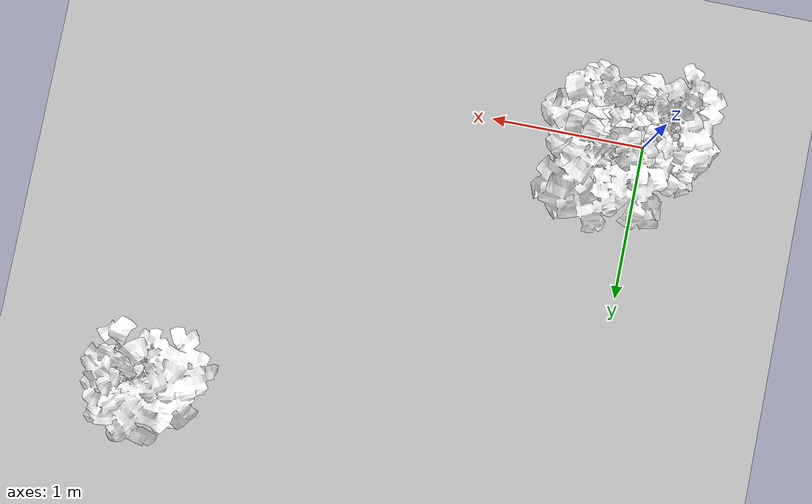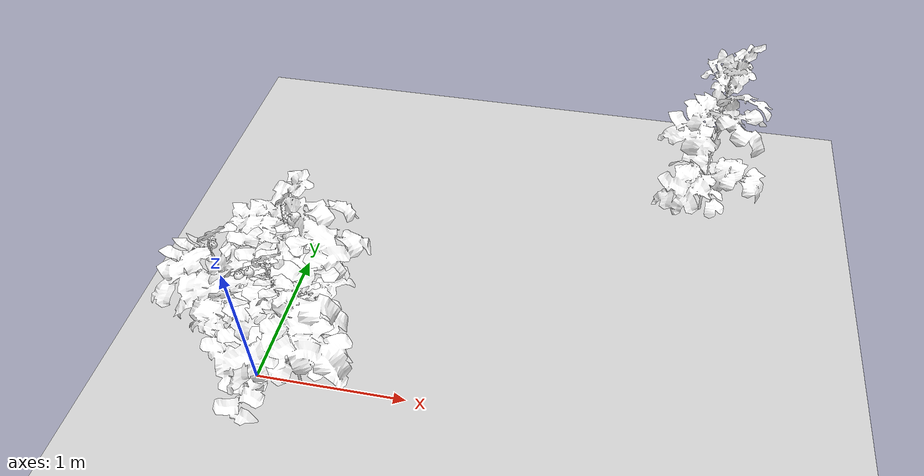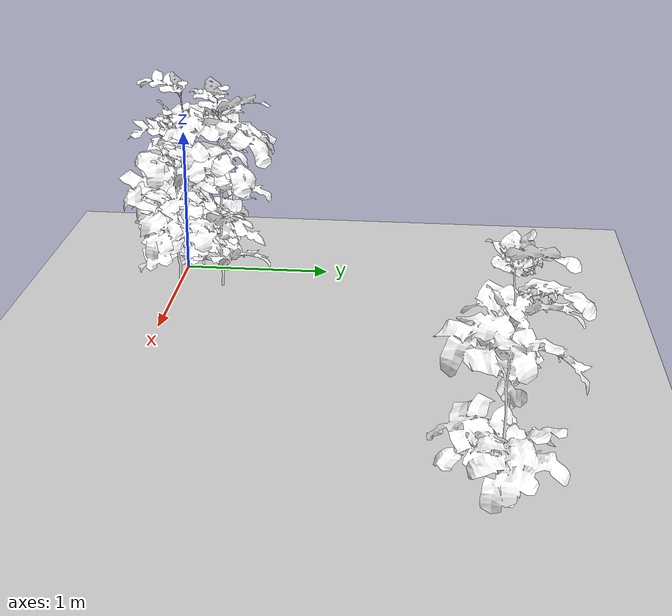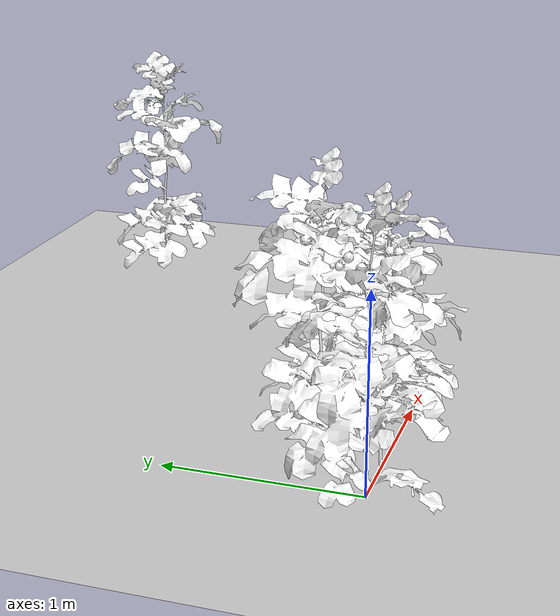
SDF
<sdf version="1.7">
 <world name="field">
  <physics name="1ms" type="ignored">
   <max_step_size>0.001</max_step_size>
   <real_time_factor>1</real_time_factor>
   <real_time_update_rate>1000</real_time_update_rate>
  </physics>
  <plugin name="ignition::gazebo::systems::Physics" filename="ignition-gazebo-physics-system"/>
  <plugin name="ignition::gazebo::systems::UserCommands" filename="ignition-gazebo-user-commands-system"/>
  <plugin name="ignition::gazebo::systems::SceneBroadcaster" filename="ignition-gazebo-scene-broadcaster-system"/>
  <plugin filename="ignition-gazebo-sensors-system" name="ignition::gazebo::systems::Sensors">
   <render_engine>ogre2</render_engine>
  </plugin>
  <scene><ambient>1 1 1 1</ambient><background>0.8 0.8 0.8 1</background><shadows>1</shadows></scene>
  <light name="sun" type="directional">
   <pose>0 0 10 0 -0 0</pose>
   <diffuse>0.8 0.8 0.8 1</diffuse>
   <specular>0.8 0.8 0.8 1</specular>
   <attenuation>
    <range>1000</range>
    <constant>0.9</constant>
    <linear>0.01</linear>
    <quadratic>0.001</quadratic>
   </attenuation>
   <direction>-0.5 0.1 -0.9</direction>
   <spot><inner_angle>0</inner_angle><outer_angle>0</outer_angle><falloff>0</falloff></spot>
  </light>
  <gravity>0 0 -9.8</gravity>
  <magnetic_field>6e-06 2.3e-05 -4.2e-05</magnetic_field>
  <atmosphere type="adiabatic"/>
  <include><uri>ground</uri><name>ground</name><pose>5.0 5.0 0 0 0 0</pose></include>
  <include><uri>tomato_0</uri><name>tomato_0</name></include>
  <include><uri>tomato_10</uri><name>tomato_10</name><pose>0.3 0.0 0 0 0 0</pose></include>
  <include><uri>tomato_11</uri><name>tomato_11</name><pose>0.3 0.3 0 0 0 0</pose></include>
  <include><uri>tomato_27</uri><name>tomato_27</name><pose>2.8 2.1 0 0 0 0</pose></include>
 </world>
</sdf>

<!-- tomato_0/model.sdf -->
<sdf version="1.6">
  <model name="tomato_0">
    <static>true</static>
    <link name="link">
      <collision name="collision">
        <geometry>
          <box>
            <size>.1 .1 1</size>
          </box>
        </geometry>
      </collision>
      <visual name="branch">
        <geometry>
          <mesh>
            <uri>file://tomato_0/meshes/tomato.dae</uri>
            <submesh>
              <name>Branch1</name>
            </submesh>
          </mesh>
        </geometry>
        <material>
          <diffuse>1.0 1.0 1.0</diffuse>
          <pbr>
            <metal>
              <albedo_map>file://tomato_0/materials/textures/AG15brn1.png</albedo_map>
            </metal>
          </pbr>
        </material>
          <plugin filename="ignition-gazebo-label-system" name="ignition::gazebo::systems::Label">
            <label>2</label>
          </plugin>
      </visual>
      <visual name="leaf1">
        <geometry>
          <mesh>
            <uri>file://tomato_0/meshes/tomato.dae</uri>
            <submesh>
              <name>Leaf1</name>
            </submesh>
          </mesh>
        </geometry>
        <material>
          <diffuse>1.0 1.0 1.0</diffuse>
          <pbr>
            <metal>
              <albedo_map>file://tomato_0/materials/textures/AG15lef1.png</albedo_map>
            </metal>
          </pbr>
        </material>
          <plugin filename="ignition-gazebo-label-system" name="ignition::gazebo::systems::Label">
            <label>3</label>
          </plugin>
      </visual>
      <visual name="leaf2">
        <geometry>
          <mesh>
            <uri>file://tomato_0/meshes/tomato.dae</uri>
            <submesh>
              <name>Leaf2</name>
            </submesh>
          </mesh>
        </geometry>
        <material>
          <diffuse>1.0 1.0 1.0</diffuse>
          <pbr>
            <metal>
              <albedo_map>file://tomato_0/materials/textures/AG15lef2.png</albedo_map>
            </metal>
          </pbr>
        </material>
          <plugin filename="ignition-gazebo-label-system" name="ignition::gazebo::systems::Label">
            <label>3</label>
          </plugin>
      </visual>
      <visual name="fruit1">
        <geometry>
          <mesh>
            <uri>file://tomato_0/meshes/tomato.dae</uri>
            <submesh>
              <name>Fruit1</name>
            </submesh>
          </mesh>
        </geometry>
        <material>
          <diffuse>1.0 1.0 1.0</diffuse>
          <pbr>
            <metal>
              <albedo_map>file://tomato_0/materials/textures/AG15frt1.png</albedo_map>
            </metal>
          </pbr>
        </material>
          <plugin filename="ignition-gazebo-label-system" name="ignition::gazebo::systems::Label">
            <label>4</label>
          </plugin>
      </visual>
      <visual name="fruit2">
        <geometry>
          <mesh>
            <uri>file://tomato_0/meshes/tomato.dae</uri>
            <submesh>
              <name>Fruit2</name>
            </submesh>
          </mesh>
        </geometry>
        <material>
          <diffuse>1.0 1.0 1.0</diffuse>
          <pbr>
            <metal>
              <albedo_map>file://tomato_0/materials/textures/AG15frt2.png</albedo_map>
            </metal>
          </pbr>
        </material>
          <plugin filename="ignition-gazebo-label-system" name="ignition::gazebo::systems::Label">
            <label>4</label>
          </plugin>
      </visual>
      <visual name="fruit3">
        <geometry>
          <mesh>
            <uri>file://tomato_0/meshes/tomato.dae</uri>
            <submesh>
              <name>Fruit3</name>
            </submesh>
          </mesh>
        </geometry>
        <material>
          <diffuse>1.0 1.0 1.0</diffuse>
          <pbr>
            <metal>
              <albedo_map>file://tomato_0/materials/textures/AG15frt3.png</albedo_map>
            </metal>
          </pbr>
        </material>
      </visual>
          <plugin filename="ignition-gazebo-label-system" name="ignition::gazebo::systems::Label">
            <label>4</label>
          </plugin>
      <visual name="fruit4">
        <geometry>
          <mesh>
            <uri>file://tomato_0/meshes/tomato.dae</uri>
            <submesh>
              <name>Fruit4</name>
            </submesh>
          </mesh>
        </geometry>
        <material>
          <diffuse>1.0 1.0 1.0</diffuse>
          <pbr>
            <metal>
              <albedo_map>file://tomato_0/materials/textures/AG15frt4.png</albedo_map>
            </metal>
          </pbr>
        </material>
          <plugin filename="ignition-gazebo-label-system" name="ignition::gazebo::systems::Label">
            <label>4</label>
          </plugin>
      </visual>
      <visual name="blossom1">
        <geometry>
          <mesh>
            <uri>file://tomato_0/meshes/tomato.dae</uri>
            <submesh>
              <name>Blossom1</name>
            </submesh>
          </mesh>
        </geometry>
        <material>
          <diffuse>1.0 1.0 1.0</diffuse>
          <pbr>
            <metal>
              <albedo_map>file://tomato_0/materials/textures/AG15blo1.png</albedo_map>
            </metal>
          </pbr>
        </material>
          <plugin filename="ignition-gazebo-label-system" name="ignition::gazebo::systems::Label">
            <label>5</label>
          </plugin>
      </visual>
      <visual name="blossom2">
        <geometry>
          <mesh>
            <uri>file://tomato_0/meshes/tomato.dae</uri>
            <submesh>
              <name>Blossom2</name>
            </submesh>
          </mesh>
        </geometry>
        <material>
          <diffuse>1.0 1.0 1.0</diffuse>
          <pbr>
            <metal>
              <albedo_map>file://tomato_0/materials/textures/AG15blo2.png</albedo_map>
            </metal>
          </pbr>
        </material>
          <plugin filename="ignition-gazebo-label-system" name="ignition::gazebo::systems::Label">
            <label>5</label>
          </plugin>
      </visual>
      <visual name="blossom3">
        <geometry>
          <mesh>
            <uri>file://tomato_0/meshes/tomato.dae</uri>
            <submesh>
              <name>Blossom3</name>
            </submesh>
          </mesh>
        </geometry>
        <material>
          <diffuse>1.0 1.0 1.0</diffuse>
          <pbr>
            <metal>
              <albedo_map>file://tomato_0/materials/textures/AG15blo3.png</albedo_map>
            </metal>
          </pbr>
        </material>
          <plugin filename="ignition-gazebo-label-system" name="ignition::gazebo::systems::Label">
            <label>5</label>
          </plugin>
      </visual>
    </link>
  </model>
</sdf>

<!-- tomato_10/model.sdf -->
<sdf version="1.6">
  <model name="tomato_10">
    <static>true</static>
    <link name="link">
      <collision name="collision">
        <geometry>
          <box>
            <size>.1 .1 1</size>
          </box>
        </geometry>
      </collision>
      <visual name="branch">
        <geometry>
          <mesh>
            <uri>file://tomato_10/meshes/tomato.dae</uri>
            <submesh>
              <name>Branch1</name>
            </submesh>
          </mesh>
        </geometry>
        <material>
          <diffuse>1.0 1.0 1.0</diffuse>
          <pbr>
            <metal>
              <albedo_map>file://tomato_10/materials/textures/AG15brn1.png</albedo_map>
            </metal>
          </pbr>
        </material>
          <plugin filename="ignition-gazebo-label-system" name="ignition::gazebo::systems::Label">
            <label>2</label>
          </plugin>
      </visual>
      <visual name="leaf1">
        <geometry>
          <mesh>
            <uri>file://tomato_10/meshes/tomato.dae</uri>
            <submesh>
              <name>Leaf1</name>
            </submesh>
          </mesh>
        </geometry>
        <material>
          <diffuse>1.0 1.0 1.0</diffuse>
          <pbr>
            <metal>
              <albedo_map>file://tomato_10/materials/textures/AG15lef1.png</albedo_map>
            </metal>
          </pbr>
        </material>
          <plugin filename="ignition-gazebo-label-system" name="ignition::gazebo::systems::Label">
            <label>3</label>
          </plugin>
      </visual>
      <visual name="leaf2">
        <geometry>
          <mesh>
            <uri>file://tomato_10/meshes/tomato.dae</uri>
            <submesh>
              <name>Leaf2</name>
            </submesh>
          </mesh>
        </geometry>
        <material>
          <diffuse>1.0 1.0 1.0</diffuse>
          <pbr>
            <metal>
              <albedo_map>file://tomato_10/materials/textures/AG15lef2.png</albedo_map>
            </metal>
          </pbr>
        </material>
          <plugin filename="ignition-gazebo-label-system" name="ignition::gazebo::systems::Label">
            <label>3</label>
          </plugin>
      </visual>
      <visual name="fruit1">
        <geometry>
          <mesh>
            <uri>file://tomato_10/meshes/tomato.dae</uri>
            <submesh>
              <name>Fruit1</name>
            </submesh>
          </mesh>
        </geometry>
        <material>
          <diffuse>1.0 1.0 1.0</diffuse>
          <pbr>
            <metal>
              <albedo_map>file://tomato_10/materials/textures/AG15frt1.png</albedo_map>
            </metal>
          </pbr>
        </material>
          <plugin filename="ignition-gazebo-label-system" name="ignition::gazebo::systems::Label">
            <label>4</label>
          </plugin>
      </visual>
      <visual name="fruit2">
        <geometry>
          <mesh>
            <uri>file://tomato_10/meshes/tomato.dae</uri>
            <submesh>
              <name>Fruit2</name>
            </submesh>
          </mesh>
        </geometry>
        <material>
          <diffuse>1.0 1.0 1.0</diffuse>
          <pbr>
            <metal>
              <albedo_map>file://tomato_10/materials/textures/AG15frt2.png</albedo_map>
            </metal>
          </pbr>
        </material>
          <plugin filename="ignition-gazebo-label-system" name="ignition::gazebo::systems::Label">
            <label>4</label>
          </plugin>
      </visual>
      <visual name="fruit3">
        <geometry>
          <mesh>
            <uri>file://tomato_10/meshes/tomato.dae</uri>
            <submesh>
              <name>Fruit3</name>
            </submesh>
          </mesh>
        </geometry>
        <material>
          <diffuse>1.0 1.0 1.0</diffuse>
          <pbr>
            <metal>
              <albedo_map>file://tomato_10/materials/textures/AG15frt3.png</albedo_map>
            </metal>
          </pbr>
        </material>
      </visual>
          <plugin filename="ignition-gazebo-label-system" name="ignition::gazebo::systems::Label">
            <label>4</label>
          </plugin>
      <visual name="fruit4">
        <geometry>
          <mesh>
            <uri>file://tomato_10/meshes/tomato.dae</uri>
            <submesh>
              <name>Fruit4</name>
            </submesh>
          </mesh>
        </geometry>
        <material>
          <diffuse>1.0 1.0 1.0</diffuse>
          <pbr>
            <metal>
              <albedo_map>file://tomato_10/materials/textures/AG15frt4.png</albedo_map>
            </metal>
          </pbr>
        </material>
          <plugin filename="ignition-gazebo-label-system" name="ignition::gazebo::systems::Label">
            <label>4</label>
          </plugin>
      </visual>
      <visual name="blossom1">
        <geometry>
          <mesh>
            <uri>file://tomato_10/meshes/tomato.dae</uri>
            <submesh>
              <name>Blossom1</name>
            </submesh>
          </mesh>
        </geometry>
        <material>
          <diffuse>1.0 1.0 1.0</diffuse>
          <pbr>
            <metal>
              <albedo_map>file://tomato_10/materials/textures/AG15blo1.png</albedo_map>
            </metal>
          </pbr>
        </material>
          <plugin filename="ignition-gazebo-label-system" name="ignition::gazebo::systems::Label">
            <label>5</label>
          </plugin>
      </visual>
      <visual name="blossom2">
        <geometry>
          <mesh>
            <uri>file://tomato_10/meshes/tomato.dae</uri>
            <submesh>
              <name>Blossom2</name>
            </submesh>
          </mesh>
        </geometry>
        <material>
          <diffuse>1.0 1.0 1.0</diffuse>
          <pbr>
            <metal>
              <albedo_map>file://tomato_10/materials/textures/AG15blo2.png</albedo_map>
            </metal>
          </pbr>
        </material>
          <plugin filename="ignition-gazebo-label-system" name="ignition::gazebo::systems::Label">
            <label>5</label>
          </plugin>
      </visual>
      <visual name="blossom3">
        <geometry>
          <mesh>
            <uri>file://tomato_10/meshes/tomato.dae</uri>
            <submesh>
              <name>Blossom3</name>
            </submesh>
          </mesh>
        </geometry>
        <material>
          <diffuse>1.0 1.0 1.0</diffuse>
          <pbr>
            <metal>
              <albedo_map>file://tomato_10/materials/textures/AG15blo3.png</albedo_map>
            </metal>
          </pbr>
        </material>
          <plugin filename="ignition-gazebo-label-system" name="ignition::gazebo::systems::Label">
            <label>5</label>
          </plugin>
      </visual>
    </link>
  </model>
</sdf>

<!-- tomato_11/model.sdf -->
<sdf version="1.6">
  <model name="tomato_11">
    <static>true</static>
    <link name="link">
      <collision name="collision">
        <geometry>
          <box>
            <size>.1 .1 1</size>
          </box>
        </geometry>
      </collision>
      <visual name="branch">
        <geometry>
          <mesh>
            <uri>file://tomato_11/meshes/tomato.dae</uri>
            <submesh>
              <name>Branch1</name>
            </submesh>
          </mesh>
        </geometry>
        <material>
          <diffuse>1.0 1.0 1.0</diffuse>
          <pbr>
            <metal>
              <albedo_map>file://tomato_11/materials/textures/AG15brn1.png</albedo_map>
            </metal>
          </pbr>
        </material>
          <plugin filename="ignition-gazebo-label-system" name="ignition::gazebo::systems::Label">
            <label>2</label>
          </plugin>
      </visual>
      <visual name="leaf1">
        <geometry>
          <mesh>
            <uri>file://tomato_11/meshes/tomato.dae</uri>
            <submesh>
              <name>Leaf1</name>
            </submesh>
          </mesh>
        </geometry>
        <material>
          <diffuse>1.0 1.0 1.0</diffuse>
          <pbr>
            <metal>
              <albedo_map>file://tomato_11/materials/textures/AG15lef1.png</albedo_map>
            </metal>
          </pbr>
        </material>
          <plugin filename="ignition-gazebo-label-system" name="ignition::gazebo::systems::Label">
            <label>3</label>
          </plugin>
      </visual>
      <visual name="leaf2">
        <geometry>
          <mesh>
            <uri>file://tomato_11/meshes/tomato.dae</uri>
            <submesh>
              <name>Leaf2</name>
            </submesh>
          </mesh>
        </geometry>
        <material>
          <diffuse>1.0 1.0 1.0</diffuse>
          <pbr>
            <metal>
              <albedo_map>file://tomato_11/materials/textures/AG15lef2.png</albedo_map>
            </metal>
          </pbr>
        </material>
          <plugin filename="ignition-gazebo-label-system" name="ignition::gazebo::systems::Label">
            <label>3</label>
          </plugin>
      </visual>
      <visual name="fruit1">
        <geometry>
          <mesh>
            <uri>file://tomato_11/meshes/tomato.dae</uri>
            <submesh>
              <name>Fruit1</name>
            </submesh>
          </mesh>
        </geometry>
        <material>
          <diffuse>1.0 1.0 1.0</diffuse>
          <pbr>
            <metal>
              <albedo_map>file://tomato_11/materials/textures/AG15frt1.png</albedo_map>
            </metal>
          </pbr>
        </material>
          <plugin filename="ignition-gazebo-label-system" name="ignition::gazebo::systems::Label">
            <label>4</label>
          </plugin>
      </visual>
      <visual name="fruit2">
        <geometry>
          <mesh>
            <uri>file://tomato_11/meshes/tomato.dae</uri>
            <submesh>
              <name>Fruit2</name>
            </submesh>
          </mesh>
        </geometry>
        <material>
          <diffuse>1.0 1.0 1.0</diffuse>
          <pbr>
            <metal>
              <albedo_map>file://tomato_11/materials/textures/AG15frt2.png</albedo_map>
            </metal>
          </pbr>
        </material>
          <plugin filename="ignition-gazebo-label-system" name="ignition::gazebo::systems::Label">
            <label>4</label>
          </plugin>
      </visual>
      <visual name="fruit3">
        <geometry>
          <mesh>
            <uri>file://tomato_11/meshes/tomato.dae</uri>
            <submesh>
              <name>Fruit3</name>
            </submesh>
          </mesh>
        </geometry>
        <material>
          <diffuse>1.0 1.0 1.0</diffuse>
          <pbr>
            <metal>
              <albedo_map>file://tomato_11/materials/textures/AG15frt3.png</albedo_map>
            </metal>
          </pbr>
        </material>
      </visual>
          <plugin filename="ignition-gazebo-label-system" name="ignition::gazebo::systems::Label">
            <label>4</label>
          </plugin>
      <visual name="fruit4">
        <geometry>
          <mesh>
            <uri>file://tomato_11/meshes/tomato.dae</uri>
            <submesh>
              <name>Fruit4</name>
            </submesh>
          </mesh>
        </geometry>
        <material>
          <diffuse>1.0 1.0 1.0</diffuse>
          <pbr>
            <metal>
              <albedo_map>file://tomato_11/materials/textures/AG15frt4.png</albedo_map>
            </metal>
          </pbr>
        </material>
          <plugin filename="ignition-gazebo-label-system" name="ignition::gazebo::systems::Label">
            <label>4</label>
          </plugin>
      </visual>
      <visual name="blossom1">
        <geometry>
          <mesh>
            <uri>file://tomato_11/meshes/tomato.dae</uri>
            <submesh>
              <name>Blossom1</name>
            </submesh>
          </mesh>
        </geometry>
        <material>
          <diffuse>1.0 1.0 1.0</diffuse>
          <pbr>
            <metal>
              <albedo_map>file://tomato_11/materials/textures/AG15blo1.png</albedo_map>
            </metal>
          </pbr>
        </material>
          <plugin filename="ignition-gazebo-label-system" name="ignition::gazebo::systems::Label">
            <label>5</label>
          </plugin>
      </visual>
      <visual name="blossom2">
        <geometry>
          <mesh>
            <uri>file://tomato_11/meshes/tomato.dae</uri>
            <submesh>
              <name>Blossom2</name>
            </submesh>
          </mesh>
        </geometry>
        <material>
          <diffuse>1.0 1.0 1.0</diffuse>
          <pbr>
            <metal>
              <albedo_map>file://tomato_11/materials/textures/AG15blo2.png</albedo_map>
            </metal>
          </pbr>
        </material>
          <plugin filename="ignition-gazebo-label-system" name="ignition::gazebo::systems::Label">
            <label>5</label>
          </plugin>
      </visual>
      <visual name="blossom3">
        <geometry>
          <mesh>
            <uri>file://tomato_11/meshes/tomato.dae</uri>
            <submesh>
              <name>Blossom3</name>
            </submesh>
          </mesh>
        </geometry>
        <material>
          <diffuse>1.0 1.0 1.0</diffuse>
          <pbr>
            <metal>
              <albedo_map>file://tomato_11/materials/textures/AG15blo3.png</albedo_map>
            </metal>
          </pbr>
        </material>
          <plugin filename="ignition-gazebo-label-system" name="ignition::gazebo::systems::Label">
            <label>5</label>
          </plugin>
      </visual>
    </link>
  </model>
</sdf>

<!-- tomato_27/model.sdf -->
<sdf version="1.6">
  <model name="tomato_27">
    <static>true</static>
    <link name="link">
      <collision name="collision">
        <geometry>
          <box>
            <size>.1 .1 1</size>
          </box>
        </geometry>
      </collision>
      <visual name="branch">
        <geometry>
          <mesh>
            <uri>file://tomato_27/meshes/tomato.dae</uri>
            <submesh>
              <name>Branch1</name>
            </submesh>
          </mesh>
        </geometry>
        <material>
          <diffuse>1.0 1.0 1.0</diffuse>
          <pbr>
            <metal>
              <albedo_map>file://tomato_27/materials/textures/AG15brn1.png</albedo_map>
            </metal>
          </pbr>
        </material>
          <plugin filename="ignition-gazebo-label-system" name="ignition::gazebo::systems::Label">
            <label>2</label>
          </plugin>
      </visual>
      <visual name="leaf1">
        <geometry>
          <mesh>
            <uri>file://tomato_27/meshes/tomato.dae</uri>
            <submesh>
              <name>Leaf1</name>
            </submesh>
          </mesh>
        </geometry>
        <material>
          <diffuse>1.0 1.0 1.0</diffuse>
          <pbr>
            <metal>
              <albedo_map>file://tomato_27/materials/textures/AG15lef1.png</albedo_map>
            </metal>
          </pbr>
        </material>
          <plugin filename="ignition-gazebo-label-system" name="ignition::gazebo::systems::Label">
            <label>3</label>
          </plugin>
      </visual>
      <visual name="leaf2">
        <geometry>
          <mesh>
            <uri>file://tomato_27/meshes/tomato.dae</uri>
            <submesh>
              <name>Leaf2</name>
            </submesh>
          </mesh>
        </geometry>
        <material>
          <diffuse>1.0 1.0 1.0</diffuse>
          <pbr>
            <metal>
              <albedo_map>file://tomato_27/materials/textures/AG15lef2.png</albedo_map>
            </metal>
          </pbr>
        </material>
          <plugin filename="ignition-gazebo-label-system" name="ignition::gazebo::systems::Label">
            <label>3</label>
          </plugin>
      </visual>
      <visual name="fruit1">
        <geometry>
          <mesh>
            <uri>file://tomato_27/meshes/tomato.dae</uri>
            <submesh>
              <name>Fruit1</name>
            </submesh>
          </mesh>
        </geometry>
        <material>
          <diffuse>1.0 1.0 1.0</diffuse>
          <pbr>
            <metal>
              <albedo_map>file://tomato_27/materials/textures/AG15frt1.png</albedo_map>
            </metal>
          </pbr>
        </material>
          <plugin filename="ignition-gazebo-label-system" name="ignition::gazebo::systems::Label">
            <label>4</label>
          </plugin>
      </visual>
      <visual name="fruit2">
        <geometry>
          <mesh>
            <uri>file://tomato_27/meshes/tomato.dae</uri>
            <submesh>
              <name>Fruit2</name>
            </submesh>
          </mesh>
        </geometry>
        <material>
          <diffuse>1.0 1.0 1.0</diffuse>
          <pbr>
            <metal>
              <albedo_map>file://tomato_27/materials/textures/AG15frt2.png</albedo_map>
            </metal>
          </pbr>
        </material>
          <plugin filename="ignition-gazebo-label-system" name="ignition::gazebo::systems::Label">
            <label>4</label>
          </plugin>
      </visual>
      <visual name="fruit3">
        <geometry>
          <mesh>
            <uri>file://tomato_27/meshes/tomato.dae</uri>
            <submesh>
              <name>Fruit3</name>
            </submesh>
          </mesh>
        </geometry>
        <material>
          <diffuse>1.0 1.0 1.0</diffuse>
          <pbr>
            <metal>
              <albedo_map>file://tomato_27/materials/textures/AG15frt3.png</albedo_map>
            </metal>
          </pbr>
        </material>
      </visual>
          <plugin filename="ignition-gazebo-label-system" name="ignition::gazebo::systems::Label">
            <label>4</label>
          </plugin>
      <visual name="fruit4">
        <geometry>
          <mesh>
            <uri>file://tomato_27/meshes/tomato.dae</uri>
            <submesh>
              <name>Fruit4</name>
            </submesh>
          </mesh>
        </geometry>
        <material>
          <diffuse>1.0 1.0 1.0</diffuse>
          <pbr>
            <metal>
              <albedo_map>file://tomato_27/materials/textures/AG15frt4.png</albedo_map>
            </metal>
          </pbr>
        </material>
          <plugin filename="ignition-gazebo-label-system" name="ignition::gazebo::systems::Label">
            <label>4</label>
          </plugin>
      </visual>
      <visual name="blossom1">
        <geometry>
          <mesh>
            <uri>file://tomato_27/meshes/tomato.dae</uri>
            <submesh>
              <name>Blossom1</name>
            </submesh>
          </mesh>
        </geometry>
        <material>
          <diffuse>1.0 1.0 1.0</diffuse>
          <pbr>
            <metal>
              <albedo_map>file://tomato_27/materials/textures/AG15blo1.png</albedo_map>
            </metal>
          </pbr>
        </material>
          <plugin filename="ignition-gazebo-label-system" name="ignition::gazebo::systems::Label">
            <label>5</label>
          </plugin>
      </visual>
      <visual name="blossom2">
        <geometry>
          <mesh>
            <uri>file://tomato_27/meshes/tomato.dae</uri>
            <submesh>
              <name>Blossom2</name>
            </submesh>
          </mesh>
        </geometry>
        <material>
          <diffuse>1.0 1.0 1.0</diffuse>
          <pbr>
            <metal>
              <albedo_map>file://tomato_27/materials/textures/AG15blo2.png</albedo_map>
            </metal>
          </pbr>
        </material>
          <plugin filename="ignition-gazebo-label-system" name="ignition::gazebo::systems::Label">
            <label>5</label>
          </plugin>
      </visual>
      <visual name="blossom3">
        <geometry>
          <mesh>
            <uri>file://tomato_27/meshes/tomato.dae</uri>
            <submesh>
              <name>Blossom3</name>
            </submesh>
          </mesh>
        </geometry>
        <material>
          <diffuse>1.0 1.0 1.0</diffuse>
          <pbr>
            <metal>
              <albedo_map>file://tomato_27/materials/textures/AG15blo3.png</albedo_map>
            </metal>
          </pbr>
        </material>
          <plugin filename="ignition-gazebo-label-system" name="ignition::gazebo::systems::Label">
            <label>5</label>
          </plugin>
      </visual>
    </link>
  </model>
</sdf>
